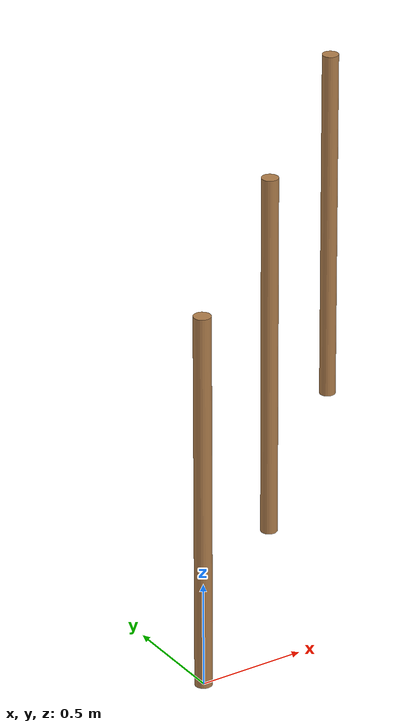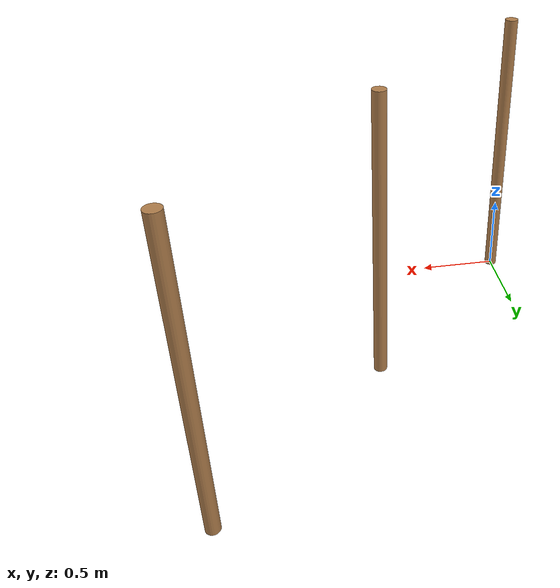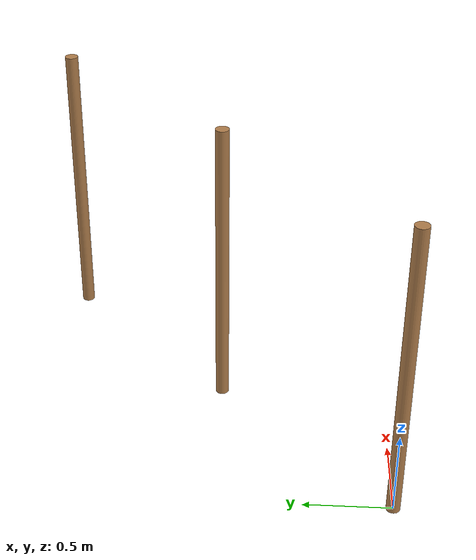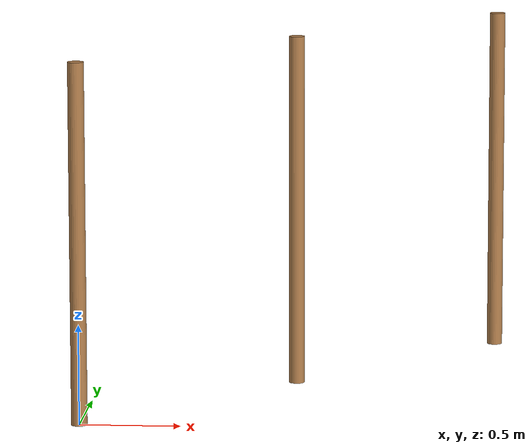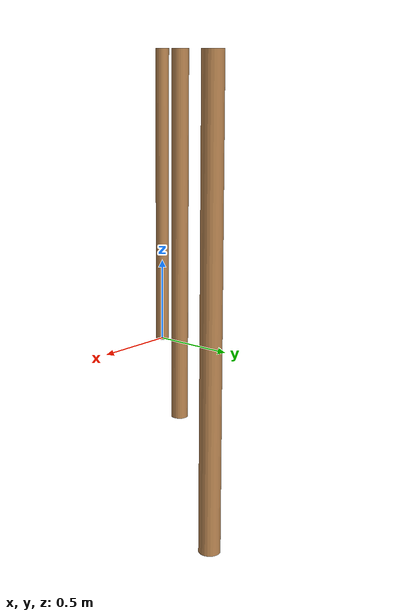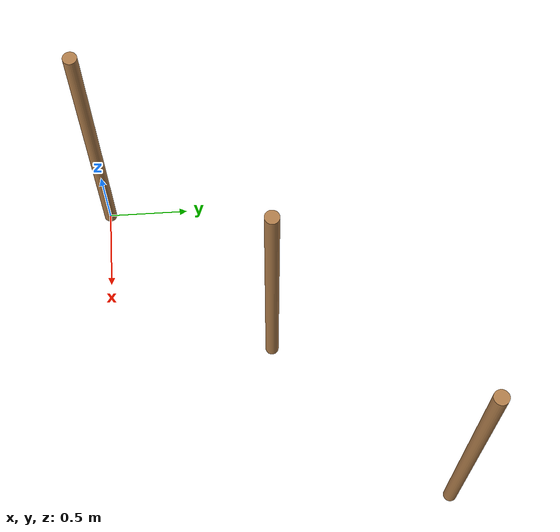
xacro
<?xml version="1.0"?>

<robot name="pergola" xmlns:xacro="http://www.ros.org/wiki/xacro">

	<xacro:property name="PI" value="3.1415926535897931"/>

	<xacro:property name="tree_h_" value="1.8"/>
	<xacro:property name="tree_r_" value="0.04"/>
	<xacro:property name="tree_m_" value="20"/>

	<xacro:include filename="$(find pergola_description)/urdf/macros.xacro" />

<link name="world" />

<tree tree_num="1" tree_col="1" tree_row="1" tree_h="${tree_h_}" tree_r="${tree_r_}" tree_m="${tree_m_}"/>
<tree tree_num="0" tree_col="0" tree_row="0" tree_h="${tree_h_}" tree_r="${tree_r_}" tree_m="${tree_m_}"/>
<tree tree_num="2" tree_col="2" tree_row="2" tree_h="${tree_h_}" tree_r="${tree_r_}" tree_m="${tree_m_}"/>

</robot>

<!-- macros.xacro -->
<robot name="pergola" >

<macro name="cylinder_inertia" params="m r h">
  <inertia  ixx="${m*(3*r*r+h*h)/12}" ixy = "0" ixz = "0"
    iyy="${m*(3*r*r+h*h)/12}" iyz = "0"
    izz="${m*r*r/2}"
  />
</macro>

<macro name="box_inertia" params="m x y z">
  <inertia  ixx="${m*(y*y+z*z)/12}" ixy = "0" ixz = "0"
    iyy="${m*(x*x+z*z)/12}" iyz = "0"
    izz="${m*(x*x+z*z)/12}"
  />
</macro>

<macro name="sphere_inertia" params="m r">
  <inertia  ixx="${2*m*r*r/5}" ixy = "0" ixz = "0"
    iyy="${2*m*r*r/5}" iyz = "0"
    izz="${2*m*r*r/5}"
  />
</macro>

<macro name="tree" params="tree_num tree_col tree_row tree_h tree_r tree_m">

<link name="tree_${tree_num}">
  <collision>
    <origin xyz="${tree_col} ${tree_row} ${tree_h/2}" rpy="0 0 0" />
    <geometry>
      <cylinder length="${tree_h}" radius="${tree_r}"/>
    </geometry>
  </collision>

  <visual>
    <origin xyz="${tree_col} ${tree_row} ${tree_h/2}" rpy="0 0 0" />
    <geometry>
      <cylinder length="${tree_h}" radius="${tree_r}"/>
    </geometry>
  </visual>

  <inertial>
    <origin xyz="${tree_col} ${tree_row} ${tree_h/2}" rpy="0 0 0" />
    <mass value="${tree_m}"/>
    <cylinder_inertia m="${tree_m}" r="${tree_r}" h="${tree_h}"/>
  </inertial>
</link>

<gazebo reference="tree_${tree_num}">
  <material>Gazebo/WoodFloor</material>
</gazebo>

<joint name="fix_tree_${tree_num}" type="fixed">
  <parent link="world"/>
  <child link="tree_${tree_num}"/>
  <origin xyz="0 0 0" rpy="0 0 0" />
</joint>
</macro>

</robot>
